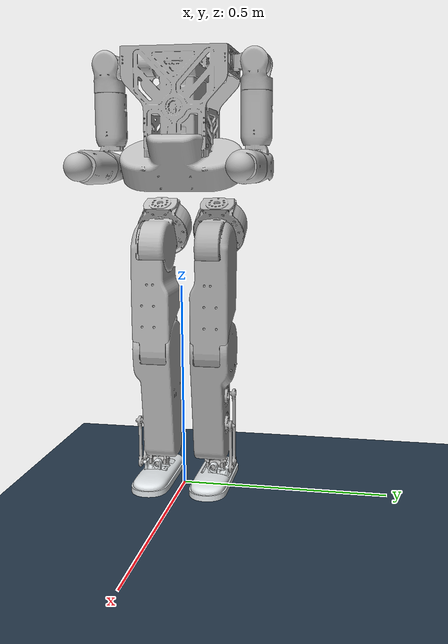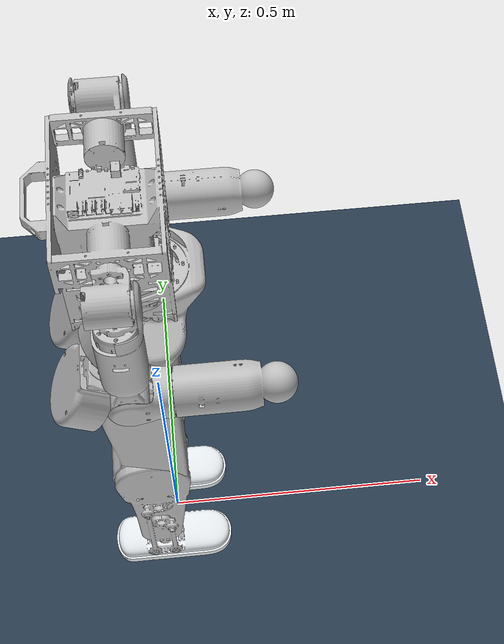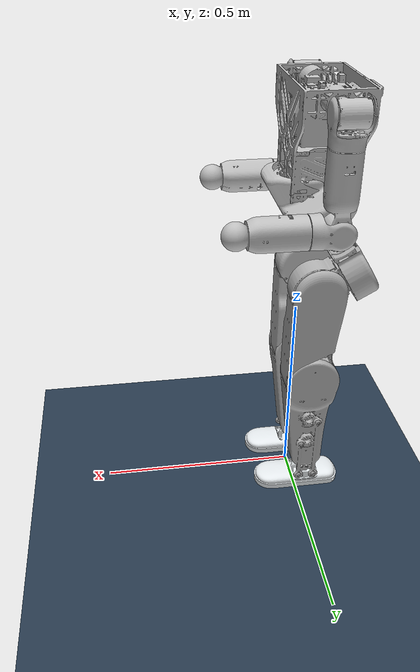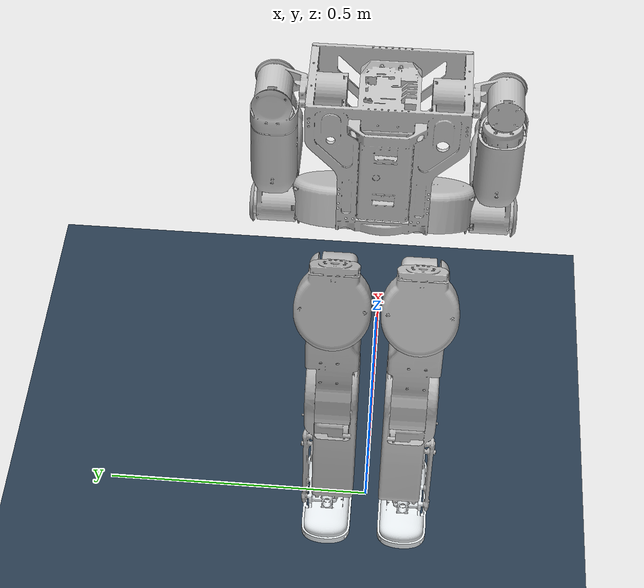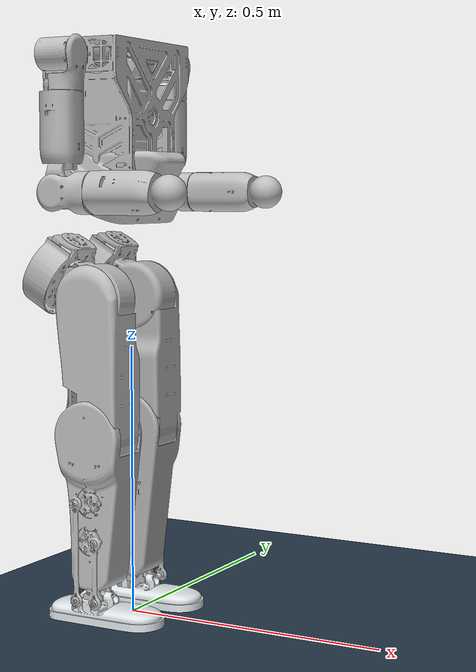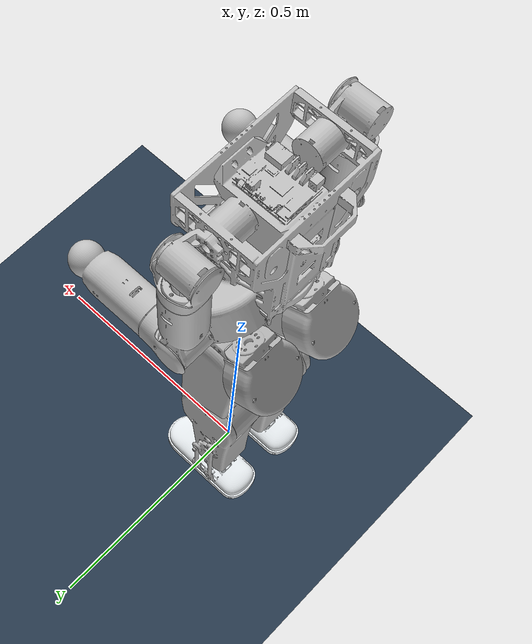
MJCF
<?xml version="1.0"?>
<mujoco model="rpo">
  <compiler angle="radian" meshdir="../meshes/" eulerseq="zyx"/>
  <option timestep="0.001" iterations="100" solver="PGS" gravity="0 0 -9.81">
    <flag frictionloss="enable"/>
  </option>
  <size njmax="5000" nconmax="1000"/>
  <visual>
    <quality shadowsize="4096"/>
    <map znear="0.05"/>
  </visual>
  <default>
    <joint limited="true"/>
    <motor ctrllimited="true"/>
    <geom condim="4" contype="1" conaffinity="0" solref="0.001 2" friction="0.9 0.2 0.2" group="1"/>
    <equality solref="0.001 2"/>
    <default class="visualgeom">
      <geom material="visualgeom" condim="1" contype="0" conaffinity="0"/>
    </default>
    <default class="obstacle">
      <geom material="obstacle" condim="3" contype="1" conaffinity="15"/>
    </default>
    <default class="waist_joint_param">
      <joint damping="0.01" frictionloss="0.01" armature="0.01"/>
    </default>
    <default class="leg_joint_param">
      <joint damping="0.01" frictionloss="0.01" armature="0.01"/>
    </default>
    <default class="arm_joint_param">
      <joint damping="0.01" frictionloss="0.01" armature="0.01"/>
    </default>
  </default>
  <asset>
    <texture type="skybox" builtin="gradient" rgb1="0.3 0.5 0.7" rgb2="0 0 0" width="512" height="512"/>
    <texture name="texplane" type="2d" builtin="checker" rgb1=".2 .3 .4" rgb2=".1 0.15 0.2" width="512" height="512" mark="cross" markrgb=".8 .8 .8"/>
    <material name="matplane" reflectance="0." texture="texplane" texrepeat="1 1" texuniform="true"/>
    <material name="obstacle" rgba="0.9 0.6 0.2 1"/>
    <material name="visualgeom" rgba="0.5 0.9 0.2 1"/>
    <mesh name="base_link" file="base_link.STL"/>
    <mesh name="left_thigh_yaw_link" file="left_thigh_yaw_link.STL"/>
    <mesh name="left_thigh_roll_link" file="left_thigh_roll_link.STL"/>
    <mesh name="left_thigh_pitch_link" file="left_thigh_pitch_link.STL"/>
    <mesh name="left_knee_link" file="left_knee_link.STL"/>
    <mesh name="left_ankle_pitch_link" file="left_ankle_pitch_link.STL"/>
    <mesh name="left_ankle_roll_link" file="left_ankle_roll_link.STL"/>
    <mesh name="right_thigh_yaw_link" file="right_thigh_yaw_link.STL"/>
    <mesh name="right_thigh_roll_link" file="right_thigh_roll_link.STL"/>
    <mesh name="right_thigh_pitch_link" file="right_thigh_pitch_link.STL"/>
    <mesh name="right_knee_link" file="right_knee_link.STL"/>
    <mesh name="right_ankle_pitch_link" file="right_ankle_pitch_link.STL"/>
    <mesh name="right_ankle_roll_link" file="right_ankle_roll_link.STL"/>
    <mesh name="torso_link" file="torso_link.STL"/>
    <mesh name="left_arm_pitch_link" file="left_arm_pitch_link.STL"/>
    <mesh name="left_arm_roll_link" file="left_arm_roll_link.STL"/>
    <mesh name="left_arm_yaw_link" file="left_arm_yaw_link.STL"/>
    <mesh name="left_elbow_pitch_link" file="left_elbow_pitch_link.STL"/>
    <mesh name="left_elbow_yaw_link" file="left_elbow_yaw_link.STL"/>
    <mesh name="right_arm_pitch_link" file="right_arm_pitch_link.STL"/>
    <mesh name="right_arm_roll_link" file="right_arm_roll_link.STL"/>
    <mesh name="right_arm_yaw_link" file="right_arm_yaw_link.STL"/>
    <mesh name="right_elbow_pitch_link" file="right_elbow_pitch_link.STL"/>
    <mesh name="right_elbow_yaw_link" file="right_elbow_yaw_link.STL"/>
    <hfield name="hf0" nrow="200" ncol="200" size="10 5 0.2 .1"/>
  </asset>
  <worldbody>
    <light directional="true" diffuse=".4 .4 .4" specular="0.1 0.1 0.1" pos="0 0 5.0" dir="0 0 -1" castshadow="false"/>
    <light directional="true" diffuse=".6 .6 .6" specular="0.2 0.2 0.2" pos="0 0 4" dir="0 0 -1"/>
    <geom name="ground" type="plane" size="0 0 1" pos="0.001 0 0" quat="1 0 0 0" material="matplane" condim="1" conaffinity="15" group="0"/>
    <body name="base_link" pos="0 0 0.75">
      <site name="imu" size="0.01" pos="0.0 0 0.0"/>
      <inertial pos="-0.04700769 -0.00000239 -0.00862801" mass="5.51295532" fullinertia="0.03052646 0.01536233 0.03006209 0.00000063 -0.00079063 0.00000026"/>
      <joint name="floating_base_joint" type="free" limited="false"/>
      <geom type="mesh" rgba="0.75294 0.75294 0.75294 1" mesh="base_link"/>
      <body name="left_thigh_yaw_link" pos="-0.071093 0.0725 -0.051778">
        <inertial pos="-0.03847656 -0.0000142 -0.05612329" mass="1.71784575" fullinertia="0.00319789 0.0024412 0.00251651 0.00000025 -0.00065088 0.00000117"/>
        <joint name="left_thigh_yaw_joint" pos="0 0 0" axis="-0.499998 0 -0.866027" range="-1 0.2" class="leg_joint_param"/>
        <geom type="mesh" rgba="0.69804 0.69804 0.69804 1" mesh="left_thigh_yaw_link"/>
        <body name="left_thigh_roll_link" pos="-0.017693 0 -0.072346">
          <inertial pos="0.05748778 -0.00601901 -0.03308921" mass="1.66236465" fullinertia="0.00212675 0.00351120 0.00228565 0.00003170 0.00014062 -0.00001801"/>
          <joint name="left_thigh_roll_joint" pos="0 0 0" axis="0.866027 0 -0.499998" range="-0.2 2" class="leg_joint_param"/>
          <geom type="mesh" rgba="0.69804 0.69804 0.69804 1" mesh="left_thigh_roll_link"/>
          <body name="left_thigh_pitch_link" pos="0.060622 0.02085 -0.035">
            <inertial pos="0.00004587 -0.01904764 -0.19858149" mass="2.34600715" fullinertia="0.02018963 0.02158818 0.00302937 -0.00000310 0.00001430 -0.00215090"/>
            <joint name="left_thigh_pitch_joint" pos="0 0 0" axis="0 1 0" range="-2.5 0.8" class="leg_joint_param"/>
            <geom type="mesh" rgba="0.69804 0.69804 0.69804 1" mesh="left_thigh_pitch_link"/>
            <body name="left_knee_link" pos="0 0 -0.25">
              <inertial pos="-0.00035292 -0.0132798 -0.15208271" mass="1.70223945" fullinertia="0.01013470 0.00981975 0.00110105 0.00002119 0.00003224 -0.00022577"/>
              <joint name="left_knee_joint" pos="0 0 0" axis="0 1 0" range="0 2.5" class="leg_joint_param"/>
              <geom type="mesh" rgba="0.69804 0.69804 0.69804 1" mesh="left_knee_link"/>
              <body name="left_ankle_pitch_link" pos="0 -0.02085 -0.3">
                <inertial pos="0.0 0.0 0.0" mass="0.084" fullinertia="0.00000863 0.00000863 0.00001448 0.0 0.0 0.0"/>
                <joint name="left_ankle_pitch_joint" pos="0 0 0" axis="0 1 0" range="-0.7 0.7" class="leg_joint_param" frictionloss="0.05"/>
                <geom type="mesh" rgba="0.69804 0.69804 0.69804 1" mesh="left_ankle_pitch_link"/>
                <body name="left_ankle_roll_link">
                  <inertial pos="0.01454282 0.00284825 -0.02908608" mass="0.33517651" fullinertia="0.00013432 0.00054303 0.00058883 0.00001389 0.00002909 -0.00001883"/>
                  <joint name="left_ankle_roll_joint" pos="0 0 0" axis="1 0 0" range="-0.5 0.5" class="leg_joint_param" frictionloss="0.05"/>
                  <geom type="mesh" rgba="0.898039 0.917647 0.929412 1" mesh="left_ankle_roll_link"/>
                </body>
              </body>
            </body>
          </body>
        </body>
      </body>
      <body name="right_thigh_yaw_link" pos="-0.071093 -0.0725 -0.051778">
        <inertial pos="-0.03847656 0.0000142 -0.05612329" mass="1.71632614" fullinertia="0.00319396 0.0024375 0.00251592 0.0 -0.00065014 -0.00000003"/>
        <joint name="right_thigh_yaw_joint" pos="0 0 0" axis="-0.499998 0 -0.866027" range="-0.2 1" class="leg_joint_param"/>
        <geom type="mesh" rgba="0.752941 0.752941 0.752941 1" mesh="right_thigh_yaw_link"/>
        <body name="right_thigh_roll_link" pos="-0.0189924084475403 0 -0.0715958163677252">
          <inertial pos="0.05748778 0.00601901 -0.03308921" mass="1.66310652" fullinertia="0.00213051 0.00351195 0.00228331 -0.00003033 0.00013508 0.00001792"/>
          <joint name="right_thigh_roll_joint" pos="0 0 0" axis="0.866027 0 -0.499998" range="-2 0.2" class="leg_joint_param"/>
          <geom type="mesh" rgba="0.752941 0.752941 0.752941 1" mesh="right_thigh_roll_link"/>
          <body name="right_thigh_pitch_link" pos="0.0619208163652291 -0.0208499999999942 -0.0357500000093095">
            <inertial pos="0.00004587 0.01904764 -0.19858149" mass="2.34600715" fullinertia="0.02018963 0.02158818 0.00302937 0.00000309 0.00001431 0.0021509"/>
            <joint name="right_thigh_pitch_joint" pos="0 0 0" axis="0 1 0" range="-2.5 0.8" class="leg_joint_param"/>
            <geom type="mesh" rgba="0.752941 0.752941 0.752941 1" mesh="right_thigh_pitch_link"/>
            <body name="right_knee_link" pos="0 0 -0.250000000000016">
              <inertial pos="-0.00035292 0.0132798 -0.15208271" mass="1.70223945" fullinertia="0.0101347 0.00981975 0.00110105 0.00002119 -0.00003224 0.00022577"/>
              <joint name="right_knee_joint" pos="0 0 0" axis="0 1 0" range="0 2.5" class="leg_joint_param"/>
              <geom type="mesh" rgba="0.752941 0.752941 0.752941 1" mesh="right_knee_link"/>
              <body name="right_ankle_pitch_link" pos="0 0.0208500000000073 -0.299999999999986">
                <inertial pos="0 0 0" mass="0.084" fullinertia="0.00000863 0.00000863 0.00001448 0 0 0"/>
                <joint name="right_ankle_pitch_joint" pos="0 0 0" axis="0 1 0" range="-0.7 0.7" class="leg_joint_param" frictionloss="0.05"/>
                <geom type="mesh" rgba="0.752941 0.752941 0.752941 1" mesh="right_ankle_pitch_link"/>
                <body name="right_ankle_roll_link">
                  <inertial pos="0.01454282 -0.00284825 -0.02908608" mass="0.33517651" fullinertia="0.00013432 0.00054303 0.00058883 -0.00001388 0.00002909 0.00001883"/>
                  <joint name="right_ankle_roll_joint" pos="0 0 0" axis="1 0 0" range="-0.5 0.5" class="leg_joint_param" frictionloss="0.05"/>
                  <geom type="mesh" rgba="0.898039 0.917647 0.929412 1" mesh="right_ankle_roll_link"/>
                </body>
              </body>
            </body>
          </body>
        </body>
      </body>
      <body name="torso_link" pos="-0.0281649492242451 0 0.0672000000054882">
        <inertial pos="-0.007151 -0.000080 0.109682" mass="6.768" fullinertia="0.057474726 0.051674189 0.033809380 0.000049496 0.001894736 -0.000022694"/>
        <joint name="torso_joint" pos="0 0 0" axis="0 0 1" range="-2.62 2.62" class="waist_joint_param"/>
        <geom type="mesh" rgba="0.752941 0.752941 0.752941 1" mesh="torso_link"/>
        <body name="left_arm_pitch_link" pos="0 0.121749999999383 0.206175860782433">
          <inertial pos="-0.00436523 0.04995146 0.0" mass="0.47284363" fullinertia="0.00015644 0.00008197 0.00018907 0.00002207 0.0 0.0"/>
          <joint name="left_arm_pitch_joint" pos="0 0 0" axis="0 1 0" range="-3.14 2.57" class="arm_joint_param"/>
          <geom type="mesh" rgba="0.752941 0.752941 0.752941 1" mesh="left_arm_pitch_link"/>
          <body name="left_arm_roll_link" pos="0.02 0.056 0">
            <inertial pos="-0.0029007 0.0 -0.02197112" mass="0.08401883" fullinertia="0.00004601 0.00005649 0.00002712 0.0 -0.00001743 0.0"/>
            <joint name="left_arm_roll_joint" pos="0 0 0" axis="1 0 0" range="-0.25 3.14" class="arm_joint_param"/>
            <geom type="mesh" rgba="0.752941 0.752941 0.752941 1" mesh="left_arm_roll_link"/>
            <body name="left_arm_yaw_link" pos="-0.02 0 -0.05">
              <inertial pos="-0.00004328 -0.0018211 -0.10615895" mass="1.15324354" fullinertia="0.00619553 0.00615816 0.0003308 -0.00000002 -0.00000077 -0.0001812"/>
              <joint name="left_arm_yaw_joint" pos="0 0 0" axis="0 0 -1" range="-2.6 2.6" class="arm_joint_param"/>
              <geom type="mesh" rgba="0.752941 0.752941 0.752941 1" mesh="left_arm_yaw_link"/>
              <body name="left_elbow_pitch_link" pos="0 0.02 -0.18875">
                <inertial pos="0.02378501 -0.00433076 0.0" mass="0.09168684" fullinertia="0.00003059 0.00005023 0.00006277 0.00002004 0.0 0.0"/>
                <joint name="left_elbow_pitch_joint" pos="0 0 0" axis="0 1 0" range="-1 3.57" class="arm_joint_param"/>
                <geom type="mesh" rgba="0.752941 0.752941 0.752941 1" mesh="left_elbow_pitch_link"/>
                <body name="left_elbow_yaw_link" pos="0.05 -0.02 0">
                  <inertial pos="0.05317619 -0.0000345 -0.00001992" mass="0.68145595" fullinertia="0.00024481 0.00132562 0.00132647 -0.00000008 -0.00000014 -0.0000006"/>
                  <joint name="left_elbow_yaw_joint" pos="0 0 0" axis="1 0 0" range="-1.57 1.57" class="arm_joint_param"/>
                  <geom type="mesh" rgba="0.752941 0.752941 0.752941 1" mesh="left_elbow_yaw_link"/>
                </body>
              </body>
            </body>
          </body>
        </body>
        <body name="right_arm_pitch_link" pos="0 -0.12175 0.20518">
          <inertial pos="-0.00436523 -0.04995146 0.0" mass="0.47284363" fullinertia="0.00015644 0.00008197 0.00018907 -0.00002207 0.0 0.0"/>
          <joint name="right_arm_pitch_joint" pos="0 0 0" axis="0 1 0" range="-3.14 2.57" class="arm_joint_param"/>
          <geom type="mesh" rgba="0.752941 0.752941 0.752941 1" mesh="right_arm_pitch_link"/>
          <body name="right_arm_roll_link" pos="0.02 -0.056 0">
            <inertial pos="-0.0029007 0.0 -0.02197112" mass="0.08401883" fullinertia="0.00004601 0.00005649 0.00002712 0.0 -0.00001743 0.0"/>
            <joint name="right_arm_roll_joint" pos="0 0 0" axis="1 0 0" range="-3.14 0.25" class="arm_joint_param"/>
            <geom type="mesh" rgba="0.752941 0.752941 0.752941 1" mesh="right_arm_roll_link"/>
            <body name="right_arm_yaw_link" pos="-0.02 0 -0.05">
              <inertial pos="-0.00004328 0.0018211 -0.10615895" mass="1.15429959" fullinertia="0.0062043 0.00616498 0.00033199 0.00000007 -0.00000008 0.00017831"/>
              <joint name="right_arm_yaw_joint" pos="0 0 0" axis="0 0 -1" range="-2.6 2.6" class="arm_joint_param"/>
              <geom type="mesh" rgba="0.752941 0.752941 0.752941 1" mesh="right_arm_yaw_link"/>
              <body name="right_elbow_pitch_link" pos="0 -0.02 -0.18875">
                <inertial pos="0.02378501 0.00433076 0.0" mass="0.09168684" fullinertia="0.00003059 0.00005023 0.00006277 -0.00002004 0.0 0.0"/>
                <joint name="right_elbow_pitch_joint" pos="0 0 0" axis="0 1 0" range="-1.0 3.57" class="arm_joint_param"/>
                <geom type="mesh" rgba="0.752941 0.752941 0.752941 1" mesh="right_elbow_pitch_link"/>
                <body name="right_elbow_yaw_link" pos="0.05 0.02 0">
                  <inertial pos="0.05317619 0.0000345 -0.00001992" mass="0.68145595" fullinertia="0.00024481 0.00132562 0.00132647 0.00000008 0.00000014 -0.0000006"/>
                  <joint name="right_elbow_yaw_joint" pos="0 0 0" axis="1 0 0" range="-1.57 1.57" class="arm_joint_param"/>
                  <geom type="mesh" rgba="0.752941 0.752941 0.752941 1" mesh="right_elbow_yaw_link"/>
                </body>
              </body>
            </body>
          </body>
        </body>
      </body>
    </body>
  </worldbody>
  <actuator>
    <motor name="left_thigh_yaw_joint" joint="left_thigh_yaw_joint" gear="1" ctrllimited="true" ctrlrange="-200 200"/>
    <motor name="left_thigh_roll_joint" joint="left_thigh_roll_joint" gear="1" ctrllimited="true" ctrlrange="-200 200"/>
    <motor name="left_thigh_pitch_joint" joint="left_thigh_pitch_joint" gear="1" ctrllimited="true" ctrlrange="-200 200"/>
    <motor name="left_knee_joint" joint="left_knee_joint" gear="1" ctrllimited="true" ctrlrange="-200 200"/>
    <motor name="left_ankle_pitch_joint" joint="left_ankle_pitch_joint" gear="1" ctrllimited="true" ctrlrange="-200 200"/>
    <motor name="left_ankle_roll_joint" joint="left_ankle_roll_joint" gear="1" ctrllimited="true" ctrlrange="-200 200"/>
    <motor name="right_thigh_yaw_joint" joint="right_thigh_yaw_joint" gear="1" ctrllimited="true" ctrlrange="-200 200"/>
    <motor name="right_thigh_roll_joint" joint="right_thigh_roll_joint" gear="1" ctrllimited="true" ctrlrange="-200 200"/>
    <motor name="right_thigh_pitch_joint" joint="right_thigh_pitch_joint" gear="1" ctrllimited="true" ctrlrange="-200 200"/>
    <motor name="right_knee_joint" joint="right_knee_joint" gear="1" ctrllimited="true" ctrlrange="-200 200"/>
    <motor name="right_ankle_pitch_joint" joint="right_ankle_pitch_joint" gear="1" ctrllimited="true" ctrlrange="-200 200"/>
    <motor name="right_ankle_roll_joint" joint="right_ankle_roll_joint" gear="1" ctrllimited="true" ctrlrange="-200 200"/>
    <motor name="torso_joint" joint="torso_joint" gear="1" ctrllimited="true" ctrlrange="-200 200"/>
    <motor name="left_arm_pitch_joint" joint="left_arm_pitch_joint" gear="1" ctrllimited="true" ctrlrange="-200 200"/>
    <motor name="left_arm_roll_joint" joint="left_arm_roll_joint" gear="1" ctrllimited="true" ctrlrange="-200 200"/>
    <motor name="left_arm_yaw_joint" joint="left_arm_yaw_joint" gear="1" ctrllimited="true" ctrlrange="-200 200"/>
    <motor name="left_elbow_pitch_joint" joint="left_elbow_pitch_joint" gear="1" ctrllimited="true" ctrlrange="-200 200"/>
    <motor name="left_elbow_yaw_joint" joint="left_elbow_yaw_joint" gear="1" ctrllimited="true" ctrlrange="-200 200"/>
    <motor name="right_arm_pitch_joint" joint="right_arm_pitch_joint" gear="1" ctrllimited="true" ctrlrange="-200 200"/>
    <motor name="right_arm_roll_joint" joint="right_arm_roll_joint" gear="1" ctrllimited="true" ctrlrange="-200 200"/>
    <motor name="right_arm_yaw_joint" joint="right_arm_yaw_joint" gear="1" ctrllimited="true" ctrlrange="-200 200"/>
    <motor name="right_elbow_pitch_joint" joint="right_elbow_pitch_joint" gear="1" ctrllimited="true" ctrlrange="-200 200"/>
    <motor name="right_elbow_yaw_joint" joint="right_elbow_yaw_joint" gear="1" ctrllimited="true" ctrlrange="-200 200"/>
  </actuator>
  <sensor>
    <actuatorpos name="left_thigh_yaw_p" actuator="left_thigh_yaw_joint" user="13"/>
    <actuatorpos name="left_thigh_roll_p" actuator="left_thigh_roll_joint" user="13"/>
    <actuatorpos name="left_thigh_pitch_p" actuator="left_thigh_pitch_joint" user="13"/>
    <actuatorpos name="left_knee_p" actuator="left_knee_joint" user="13"/>
    <actuatorpos name="left_ankle_pitch_p" actuator="left_ankle_pitch_joint" user="13"/>
    <actuatorpos name="left_ankle_roll_p" actuator="left_ankle_roll_joint" user="13"/>
    <actuatorpos name="right_thigh_yaw_p" actuator="right_thigh_yaw_joint" user="13"/>
    <actuatorpos name="right_thigh_roll_p" actuator="right_thigh_roll_joint" user="13"/>
    <actuatorpos name="right_thigh_pitch_p" actuator="right_thigh_pitch_joint" user="13"/>
    <actuatorpos name="right_knee_p" actuator="right_knee_joint" user="13"/>
    <actuatorpos name="right_ankle_pitch_p" actuator="right_ankle_pitch_joint" user="13"/>
    <actuatorpos name="right_ankle_roll_p" actuator="right_ankle_roll_joint" user="13"/>
    <actuatorpos name="torso_yaw_p" actuator="torso_joint" user="13"/>
    <actuatorpos name="left_arm_pitch_p" actuator="left_arm_pitch_joint" user="13"/>
    <actuatorpos name="left_arm_roll_p" actuator="left_arm_roll_joint" user="13"/>
    <actuatorpos name="left_arm_yaw_p" actuator="left_arm_yaw_joint" user="13"/>
    <actuatorpos name="left_elbow_pitch_p" actuator="left_elbow_pitch_joint" user="13"/>
    <actuatorpos name="left_elbow_yaw_p" actuator="left_elbow_yaw_joint" user="13"/>
    <actuatorpos name="right_arm_pitch_p" actuator="right_arm_pitch_joint" user="13"/>
    <actuatorpos name="right_arm_roll_p" actuator="right_arm_roll_joint" user="13"/>
    <actuatorpos name="right_arm_yaw_p" actuator="right_arm_yaw_joint" user="13"/>
    <actuatorpos name="right_elbow_pitch_p" actuator="right_elbow_pitch_joint" user="13"/>
    <actuatorpos name="right_elbow_yaw_p" actuator="right_elbow_yaw_joint" user="13"/>
    <actuatorvel name="left_thigh_yaw_v" actuator="left_thigh_yaw_joint" user="13"/>
    <actuatorvel name="left_thigh_roll_v" actuator="left_thigh_roll_joint" user="13"/>
    <actuatorvel name="left_thigh_pitch_v" actuator="left_thigh_pitch_joint" user="13"/>
    <actuatorvel name="left_knee_v" actuator="left_knee_joint" user="13"/>
    <actuatorvel name="left_ankle_pitch_v" actuator="left_ankle_pitch_joint" user="13"/>
    <actuatorvel name="left_ankle_roll_v" actuator="left_ankle_roll_joint" user="13"/>
    <actuatorvel name="right_thigh_yaw_v" actuator="right_thigh_yaw_joint" user="13"/>
    <actuatorvel name="right_thigh_roll_v" actuator="right_thigh_roll_joint" user="13"/>
    <actuatorvel name="right_thigh_pitch_v" actuator="right_thigh_pitch_joint" user="13"/>
    <actuatorvel name="right_knee_v" actuator="right_knee_joint" user="13"/>
    <actuatorvel name="right_ankle_pitch_v" actuator="right_ankle_pitch_joint" user="13"/>
    <actuatorvel name="right_ankle_roll_v" actuator="right_ankle_roll_joint" user="13"/>
    <actuatorvel name="torso_yaw_v" actuator="torso_joint" user="13"/>
    <actuatorvel name="left_arm_pitch_v" actuator="left_arm_pitch_joint" user="13"/>
    <actuatorvel name="left_arm_roll_v" actuator="left_arm_roll_joint" user="13"/>
    <actuatorvel name="left_arm_yaw_v" actuator="left_arm_yaw_joint" user="13"/>
    <actuatorvel name="left_elbow_pitch_v" actuator="left_elbow_pitch_joint" user="13"/>
    <actuatorvel name="left_elbow_yaw_v" actuator="left_elbow_yaw_joint" user="13"/>
    <actuatorvel name="right_arm_pitch_v" actuator="right_arm_pitch_joint" user="13"/>
    <actuatorvel name="right_arm_roll_v" actuator="right_arm_roll_joint" user="13"/>
    <actuatorvel name="right_arm_yaw_v" actuator="right_arm_yaw_joint" user="13"/>
    <actuatorvel name="right_elbow_pitch_v" actuator="right_elbow_pitch_joint" user="13"/>
    <actuatorvel name="right_elbow_yaw_v" actuator="right_elbow_yaw_joint" user="13"/>
    <actuatorfrc name="left_thigh_yaw_f" actuator="left_thigh_yaw_joint" user="13" noise="1e-3"/>
    <actuatorfrc name="left_thigh_roll_f" actuator="left_thigh_roll_joint" user="13" noise="1e-3"/>
    <actuatorfrc name="left_thigh_pitch_f" actuator="left_thigh_pitch_joint" user="13" noise="1e-3"/>
    <actuatorfrc name="left_knee_f" actuator="left_knee_joint" user="13" noise="1e-3"/>
    <actuatorfrc name="left_ankle_pitch_f" actuator="left_ankle_pitch_joint" user="13" noise="1e-3"/>
    <actuatorfrc name="left_ankle_roll_f" actuator="left_ankle_roll_joint" user="13" noise="1e-3"/>
    <actuatorfrc name="right_thigh_yaw_f" actuator="right_thigh_yaw_joint" user="13" noise="1e-3"/>
    <actuatorfrc name="right_thigh_roll_f" actuator="right_thigh_roll_joint" user="13" noise="1e-3"/>
    <actuatorfrc name="right_thigh_pitch_f" actuator="right_thigh_pitch_joint" user="13" noise="1e-3"/>
    <actuatorfrc name="right_knee_f" actuator="right_knee_joint" user="13" noise="1e-3"/>
    <actuatorfrc name="right_ankle_pitch_f" actuator="right_ankle_pitch_joint" user="13" noise="1e-3"/>
    <actuatorfrc name="right_ankle_roll_f" actuator="right_ankle_roll_joint" user="13" noise="1e-3"/>
    <actuatorfrc name="torso_yaw_f" actuator="torso_joint" user="13" noise="1e-3"/>
    <actuatorfrc name="left_arm_pitch_f" actuator="left_arm_pitch_joint" user="13" noise="1e-3"/>
    <actuatorfrc name="left_arm_roll_f" actuator="left_arm_roll_joint" user="13" noise="1e-3"/>
    <actuatorfrc name="left_arm_yaw_f" actuator="left_arm_yaw_joint" user="13" noise="1e-3"/>
    <actuatorfrc name="left_elbow_pitch_f" actuator="left_elbow_pitch_joint" user="13" noise="1e-3"/>
    <actuatorfrc name="left_elbow_yaw_f" actuator="left_elbow_yaw_joint" user="13" noise="1e-3"/>
    <actuatorfrc name="right_arm_pitch_f" actuator="right_arm_pitch_joint" user="13" noise="1e-3"/>
    <actuatorfrc name="right_arm_roll_f" actuator="right_arm_roll_joint" user="13" noise="1e-3"/>
    <actuatorfrc name="right_arm_yaw_f" actuator="right_arm_yaw_joint" user="13" noise="1e-3"/>
    <actuatorfrc name="right_elbow_pitch_f" actuator="right_elbow_pitch_joint" user="13" noise="1e-3"/>
    <actuatorfrc name="right_elbow_yaw_f" actuator="right_elbow_yaw_joint" user="13" noise="1e-3"/>
    <framequat name="orientation" objtype="site" noise="0.001" objname="imu"/>
    <framepos name="position" objtype="site" noise="0.001" objname="imu"/>
    <gyro name="angular-velocity" site="imu" noise="0.005" cutoff="34.9"/>
    <velocimeter name="linear-velocity" site="imu" noise="0.001" cutoff="30"/>
    <accelerometer name="linear-acceleration" site="imu" noise="0.005" cutoff="157"/>
    <magnetometer name="magnetometer" site="imu"/>
  </sensor>
  <visual>
    <global offwidth="1920" offheight="1080"/>
  </visual>
</mujoco>
